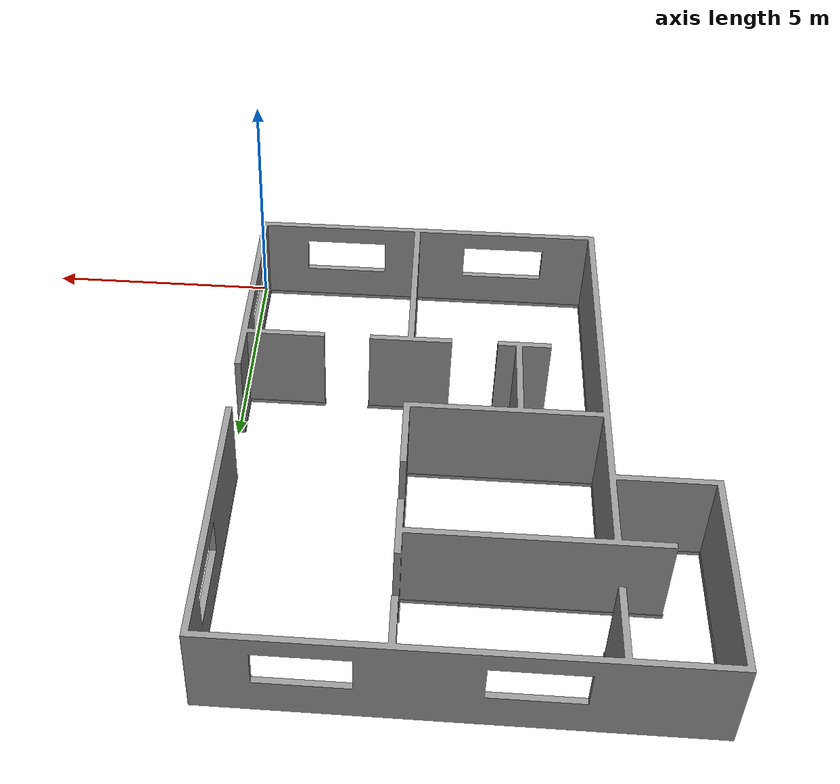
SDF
<?xml version='1.0'?>
<sdf version='1.6'>
  <model name='rai_empty_house'>
    <link name='link_0'>
      <pose frame=''>0 0 0 0 -0 1.5708</pose>
      <inertial>
        <mass>1</mass>
        <inertia>
          <ixx>0.166667</ixx>
          <ixy>0</ixy>
          <ixz>0</ixz>
          <iyy>0.166667</iyy>
          <iyz>0</iyz>
          <izz>0.166667</izz>
        </inertia>
        <pose frame=''>0 0 0 0 -0 0</pose>
      </inertial>
      <self_collide>0</self_collide>
      <kinematic>0</kinematic>
      <gravity>0</gravity>
      <visual name='visual'>
        <pose frame=''>0 0 0 0 -0 0</pose>
        <geometry>
          <mesh>
            <uri>model://rai_empty_house/meshes/rai_empty_house.STL</uri>
            <scale>1 1 1</scale>
          </mesh>
        </geometry>
        <material>
          <lighting>1</lighting>
          <script>
            <uri>file://media/materials/scripts/gazebo.material</uri>
            <name>Gazebo/Grey</name>
          </script>
          <ambient>0.95 0.95 0.95 1</ambient>
          <diffuse>0.95 0.95 0.95 1</diffuse>
          <specular>0.01 0.01 0.01 1</specular>
          <emissive>0 0 0 1</emissive>
          <shader type='vertex'>
            <normal_map>__default__</normal_map>
          </shader>
        </material>
        <cast_shadows>1</cast_shadows>
        <transparency>0</transparency>
      </visual>
      <collision name='collision'>
        <laser_retro>0</laser_retro>
        <max_contacts>10</max_contacts>
        <pose frame=''>0 0 0 0 -0 0</pose>
        <geometry>
          <mesh>
           <uri>model://rai_empty_house/meshes/rai_empty_house.STL</uri>
          </mesh>
        </geometry>
        <surface>
          <friction>
            <ode>
              <mu>1</mu>
              <mu2>1</mu2>
              <fdir1>0 0 0</fdir1>
              <slip1>0</slip1>
              <slip2>0</slip2>
            </ode>
            <torsional>
              <coefficient>1</coefficient>
              <patch_radius>0</patch_radius>
              <surface_radius>0</surface_radius>
              <use_patch_radius>1</use_patch_radius>
              <ode>
                <slip>0</slip>
              </ode>
            </torsional>
          </friction>
          <bounce>
            <restitution_coefficient>0</restitution_coefficient>
            <threshold>1e+06</threshold>
          </bounce>
          <contact>
            <collide_without_contact>0</collide_without_contact>
            <collide_without_contact_bitmask>1</collide_without_contact_bitmask>
            <collide_bitmask>1</collide_bitmask>
            <ode>
              <soft_cfm>0</soft_cfm>
              <soft_erp>0.2</soft_erp>
              <kp>1e+13</kp>
              <kd>1</kd>
              <max_vel>0.01</max_vel>
              <min_depth>0</min_depth>
            </ode>
            <bullet>
              <split_impulse>1</split_impulse>
              <split_impulse_penetration_threshold>-0.01</split_impulse_penetration_threshold>
              <soft_cfm>0</soft_cfm>
              <soft_erp>0.2</soft_erp>
              <kp>1e+13</kp>
              <kd>1</kd>
            </bullet>
          </contact>
        </surface>
      </collision>
    </link>
    <link name='link_1'>
      <pose frame=''>0 0 0 0 -0 1.5708</pose>
      <inertial>
        <mass>1</mass>
        <inertia>
          <ixx>0.166667</ixx>
          <ixy>0</ixy>
          <ixz>0</ixz>
          <iyy>0.166667</iyy>
          <iyz>0</iyz>
          <izz>0.166667</izz>
        </inertia>
        <pose frame=''>0 0 0 0 -0 0</pose>
      </inertial>
      <self_collide>0</self_collide>
      <kinematic>0</kinematic>
      <gravity>0</gravity>
      <visual name='visual'>
        <pose frame=''>0 0 0 0 -0 0</pose>
        <geometry>
          <mesh>
	    <uri>model://rai_empty_house/meshes/rai_skirting_house.STL</uri>
            <scale>1 1 1</scale>
          </mesh>
        </geometry>
        <material>
          <lighting>1</lighting>
          <script>
            <uri>file://media/materials/scripts/gazebo.material</uri>
            <name>Gazebo/Grey</name>
          </script>
          <ambient>0 0 0 1</ambient>
          <diffuse>0 0 0 1</diffuse>
          <specular>0.01 0.01 0.01 1</specular>
          <emissive>0 0 0 1</emissive>
          <shader type='vertex'>
            <normal_map>__default__</normal_map>
          </shader>
        </material>
        <cast_shadows>1</cast_shadows>
        <transparency>0</transparency>
      </visual>
    </link>
    <static>1</static>
    <allow_auto_disable>1</allow_auto_disable>
  </model>
</sdf>
